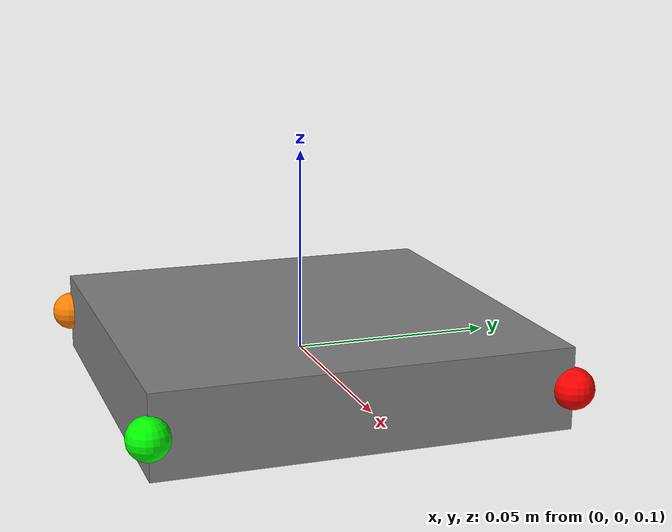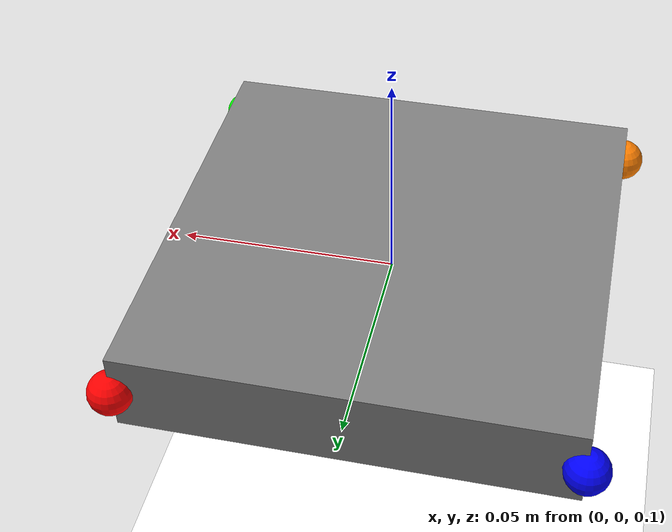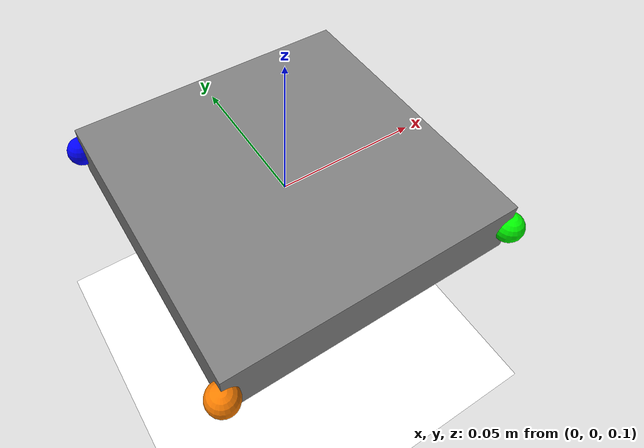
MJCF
<mujoco>
  <option timestep="0.003" gravity="0 0 -9.81" integrator="Euler"/>
  <size nstack="400000" nconmax="500"/>

  <worldbody>
    <!-- ground -->
    <geom name="ground" type="plane" size="500 500 0.01" pos="0 0 0" rgba="1 1 1 1"/>

    <!-- ドローン本体 (単一剛体) -->
    <body name="d1_drone_base" pos="0 0 0.1">
      <!-- 6DOF -->
      <freejoint/>

      <!-- ★慣性はここだけに持たせる -->
      <inertial
        pos="0 0 0"
        mass="0.71"
        diaginertia="0.0061 0.00653 0.0116" />

      <!-- 見た目用 (質量ゼロ) -->
      <geom name="d1_body_vis" type="box"
            size="0.05 0.05 0.01"
            mass="0"
            rgba="0.5 0.5 0.5 1"/>

      <!-- ★ プロペラ body 達 (質量ゼロの空ボディ) -->
      <body name="d1_prop1" pos=" 0.05  -0.05 0.0">
        <geom name="d1_prop1_vis" type="sphere"
              size="0.005"
              mass="0"
              rgba="0 1 0 1"/>
      </body>

      <body name="d1_prop2" pos="-0.05 0.05 0.0">
        <geom name="d1_prop2_vis" type="sphere"
              size="0.005"
              mass="0"
              rgba="0 0 1 1"/>
      </body>

      <body name="d1_prop3" pos=" 0.05 0.05 0.0">
        <geom name="d1_prop3_vis" type="sphere"
              size="0.005"
              mass="0"
              rgba="1 0 0 1"/>
      </body>

      <body name="d1_prop4" pos="-0.05  -0.05 0.0">
        <geom name="d1_prop4_vis" type="sphere"
              size="0.005"
              mass="0"
              rgba="1 0.5 0 1"/>
      </body>

    </body>
  </worldbody>
</mujoco>
